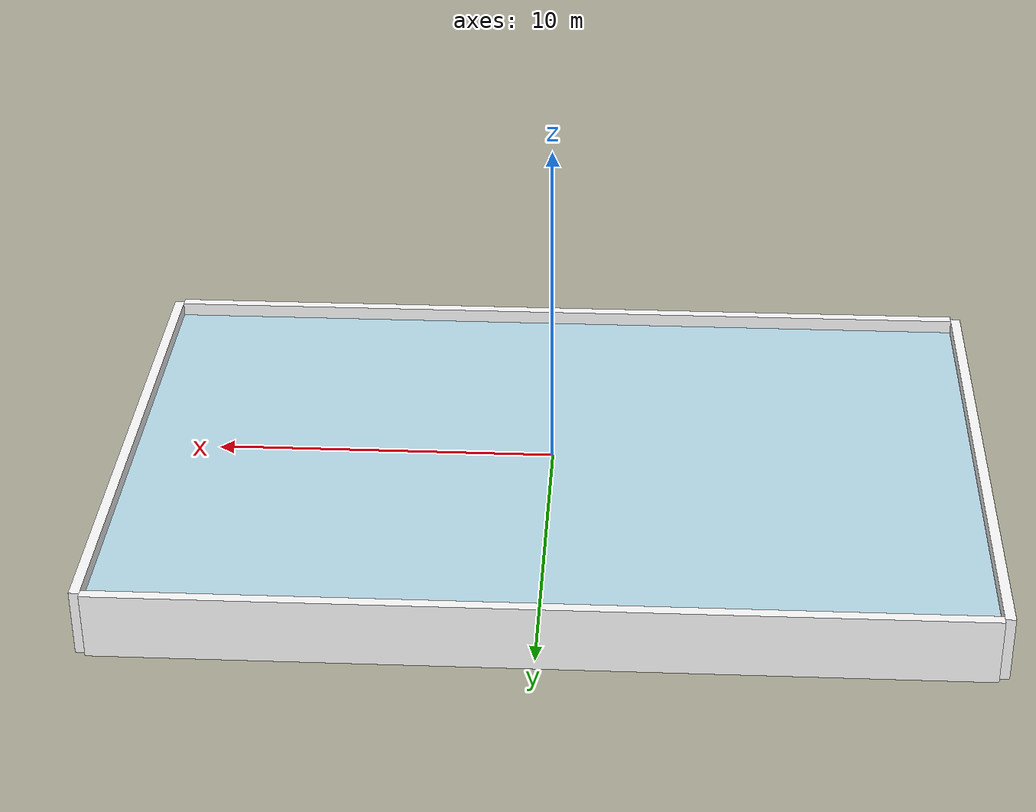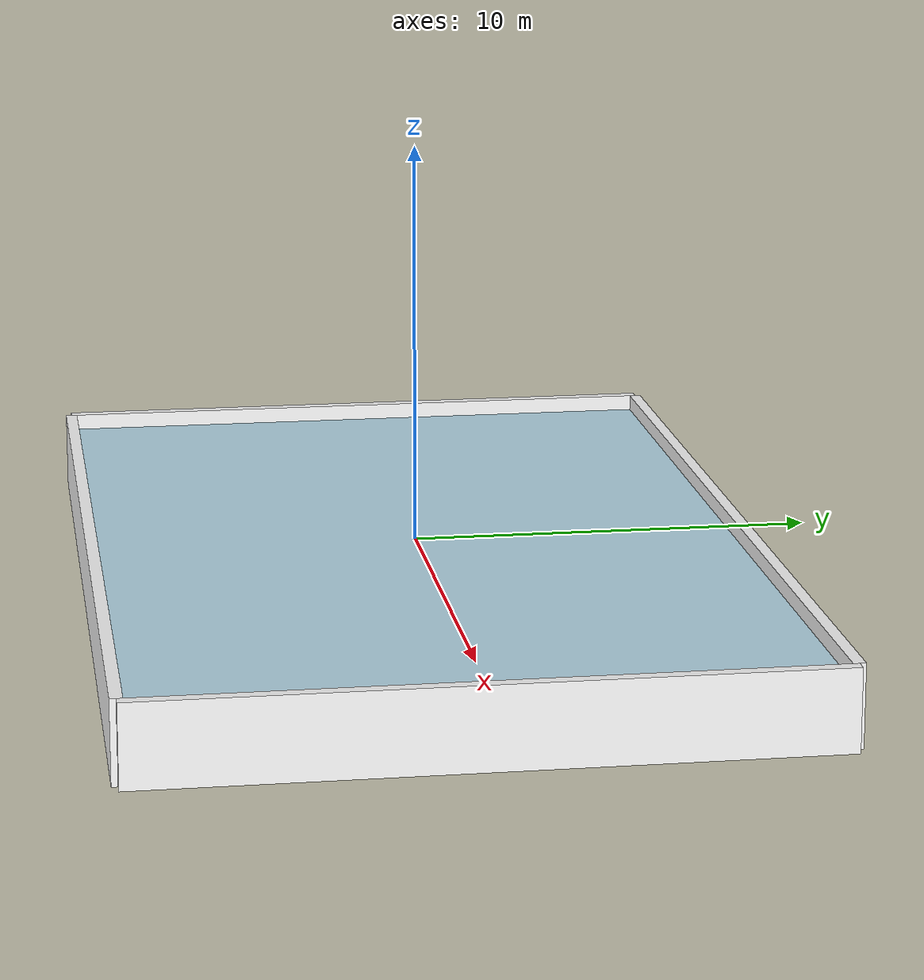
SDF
<?xml version="1.0" ?>
<sdf version="1.8">
    <world name="water_world">
        <physics name="1ms" type="ignored">
            <max_step_size>0.001</max_step_size>
            <real_time_factor>1.0</real_time_factor>
        </physics>

        <gravity>0 0 -9.81</gravity>
        <scene>
            <ambient>0.72 0.74 0.76 1</ambient>
            <background>0.80 0.88 0.92 1</background>
            <shadows>true</shadows>
        </scene>

        <plugin
            filename="libignition-gazebo-physics-system.so"
            name="ignition::gazebo::systems::Physics">
        </plugin>
        <plugin
            filename="libignition-gazebo-user-commands-system.so"
            name="ignition::gazebo::systems::UserCommands">
        </plugin>
        <plugin
            filename="libignition-gazebo-scene-broadcaster-system.so"
            name="ignition::gazebo::systems::SceneBroadcaster">
        </plugin>

        <plugin
            filename="ignition-gazebo-sensors-system"
            name="gz::sim::systems::Sensors">
            <render_engine>ogre2</render_engine>
        </plugin>

        <plugin
            filename="ignition-gazebo-buoyancy-system"
            name="ignition::gazebo::systems::Buoyancy">
            <graded_buoyancy>
                <default_density>1000</default_density>
                <density_change>
                    <above_depth>0</above_depth>
                    <density>1</density>
                </density_change>
            </graded_buoyancy>
        </plugin>

        <light type="directional" name="sun">
            <cast_shadows>true</cast_shadows>
            <pose>0 0 10 0 0 0</pose>
            <diffuse>0.75 0.76 0.78 1</diffuse>
            <specular>0.10 0.10 0.10 1</specular>
            <attenuation>
                <range>1000</range>
                <constant>0.9</constant>
                <linear>0.01</linear>
                <quadratic>0.001</quadratic>
            </attenuation>
            <direction>-0.15 0.08 -0.98</direction>
        </light>

        <light type="directional" name="wall_fill_a">
            <cast_shadows>false</cast_shadows>
            <pose>0 0 5 0 0 0</pose>
            <diffuse>0.30 0.31 0.32 1</diffuse>
            <specular>0 0 0 1</specular>
            <direction>0.82 0.41 -0.41</direction>
        </light>
        <light type="directional" name="wall_fill_b">
            <cast_shadows>false</cast_shadows>
            <pose>0 0 5 0 0 0</pose>
            <diffuse>0.30 0.31 0.32 1</diffuse>
            <specular>0 0 0 1</specular>
            <direction>-0.82 -0.41 -0.41</direction>
        </light>

        <model name="pool_structure">
            <static>true</static>
            <pose>0 0 -1.6 0 0 0</pose>

            <include>
                <uri>model://pool_ground</uri>
                <pose>0 0 0 0 0 0</pose>
            </include>

            <!-- Long walls (x direction) -->
            <link name="wall_x_pos">
                <pose>12.65 0 1.0 0 0 0</pose>
                <collision name="col">
                <geometry>
                    <box>
                    <size>0.3 16.3 2.0</size>
                    </box>
                </geometry>
                </collision>
                <visual name="vis">
                <geometry>
                    <box>
                    <size>0.3 16.3 2.0</size>
                    </box>
                </geometry>
                <material>
                    <ambient>0.95 0.96 0.97 1</ambient>
                    <diffuse>1.0 1.0 1.0 1</diffuse>
                    <specular>0.08 0.08 0.08 1</specular>
                    <emissive>0 0 0 1</emissive>
                    <pbr>
                        <metal>
                            <albedo_map>model://pool_ground/materials/textures/pool_wall_competition.png</albedo_map>
                            <metalness>0.0</metalness>
                            <roughness>0.55</roughness>
                        </metal>
                    </pbr>
                </material>
                </visual>
            </link>

            <link name="wall_x_neg">
                <pose>-12.65 0 1.0 0 0 0</pose>
                <collision name="col">
                <geometry>
                    <box>
                    <size>0.3 16.3 2.0</size>
                    </box>
                </geometry>
                </collision>
                <visual name="vis">
                <geometry>
                    <box>
                    <size>0.3 16.3 2.0</size>
                    </box>
                </geometry>
                <material>
                    <ambient>0.95 0.96 0.97 1</ambient>
                    <diffuse>1.0 1.0 1.0 1</diffuse>
                    <specular>0.08 0.08 0.08 1</specular>
                    <emissive>0 0 0 1</emissive>
                    <pbr>
                        <metal>
                            <albedo_map>model://pool_ground/materials/textures/pool_wall_competition.png</albedo_map>
                            <metalness>0.0</metalness>
                            <roughness>0.55</roughness>
                        </metal>
                    </pbr>
                </material>
                </visual>
            </link>

            <!-- Short walls (y direction) -->
            <link name="wall_y_pos">
                <pose>0 8.15 1.0 0 0 0</pose>
                <collision name="col">
                <geometry>
                    <box>
                    <size>25 0.3 2.0</size>
                    </box>
                </geometry>
                </collision>
                <visual name="vis">
                <geometry>
                    <box>
                    <size>25 0.3 2.0</size>
                    </box>
                </geometry>
                <material>
                    <ambient>0.95 0.96 0.97 1</ambient>
                    <diffuse>1.0 1.0 1.0 1</diffuse>
                    <specular>0.08 0.08 0.08 1</specular>
                    <emissive>0 0 0 1</emissive>
                    <pbr>
                        <metal>
                            <albedo_map>model://pool_ground/materials/textures/pool_wall_competition.png</albedo_map>
                            <metalness>0.0</metalness>
                            <roughness>0.55</roughness>
                        </metal>
                    </pbr>
                </material>
                </visual>
            </link>

            <link name="wall_y_neg">
                <pose>0 -8.15 1.0 0 0 0</pose>
                <collision name="col">
                <geometry>
                    <box>
                    <size>25 0.3 2.0</size>
                    </box>
                </geometry>
                </collision>
                <visual name="vis">
                <geometry>
                    <box>
                    <size>25 0.3 2.0</size>
                    </box>
                </geometry>
                <material>
                    <ambient>0.95 0.96 0.97 1</ambient>
                    <diffuse>1.0 1.0 1.0 1</diffuse>
                    <specular>0.08 0.08 0.08 1</specular>
                    <emissive>0 0 0 1</emissive>
                    <pbr>
                        <metal>
                            <albedo_map>model://pool_ground/materials/textures/pool_wall_competition.png</albedo_map>
                            <metalness>0.0</metalness>
                            <roughness>0.55</roughness>
                        </metal>
                    </pbr>
                </material>
                </visual>
            </link>
        </model>

        <model name="water_surface">
            <static>true</static>
            <pose>0 0 -0.02 0 0 0</pose>
            <link name="surface">
                <visual name="vis">
                    <geometry>
                        <box>
                            <size>25 16 0.02</size>
                        </box>
                    </geometry>
                    <material>
                        <ambient>0.62 0.78 0.86 1</ambient>
                        <diffuse>0.72 0.86 0.92 1</diffuse>
                        <specular>0.40 0.45 0.48 1</specular>
                        <emissive>0.30 0.40 0.45 1</emissive>
                    </material>
                    <cast_shadows>false</cast_shadows>
                </visual>
            </link>
        </model>

    </world>
</sdf>

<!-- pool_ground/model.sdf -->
<sdf version="1.8">
  <model name="pool_ground">
    <static>true</static>
    <link name="pool_floor">
      <collision name="collision">
        <geometry>
          <plane>
            <normal>0 0 1</normal>
            <size>25 16</size>
          </plane>
        </geometry>
        <surface>
          <contact>
            <collide_bitmask>0x01</collide_bitmask>
          </contact>
          <friction>
            <ode>
              <mu>0.8</mu>
              <mu2>0.8</mu2>
            </ode>
          </friction>
        </surface>
      </collision>

      <visual name="visual">
        <geometry>
          <plane>
            <normal>0 0 1</normal>
            <size>25 16</size>
          </plane>
        </geometry>
        <material>
          <ambient>0.55 0.60 0.63 1</ambient>
          <diffuse>1.0 1.0 1.0 1</diffuse>
          <specular>0.08 0.08 0.08 1</specular>
          <emissive>0 0 0 1</emissive>
          <pbr>
            <metal>
              <albedo_map>model://pool_ground/materials/textures/pool_floor_competition.png</albedo_map>
              <metalness>0.0</metalness>
              <roughness>0.55</roughness>
            </metal>
          </pbr>
        </material>
      </visual>
    </link>
  </model>
</sdf>
